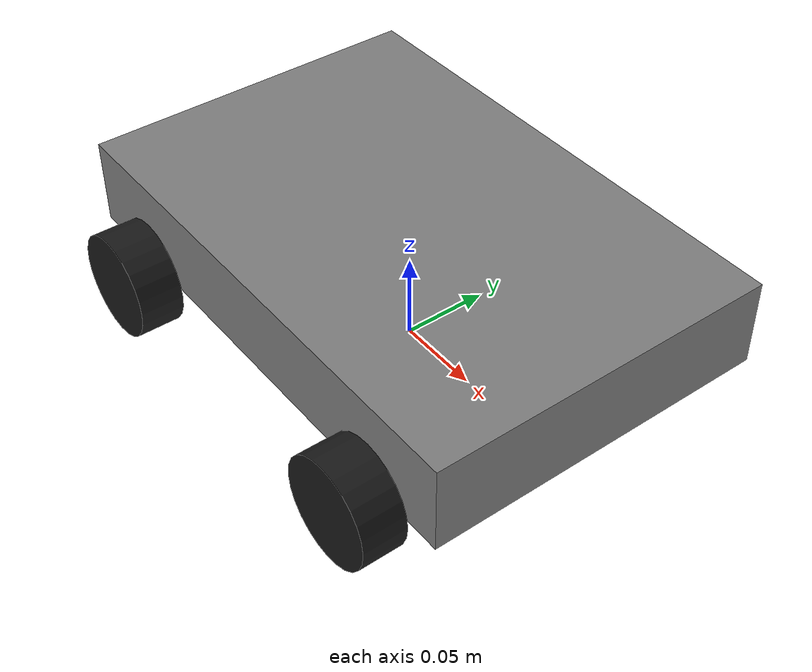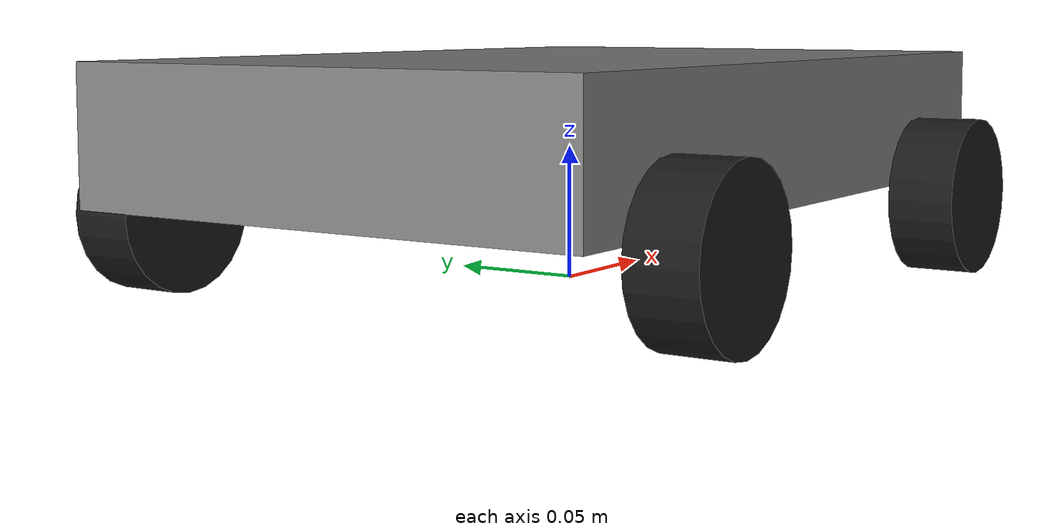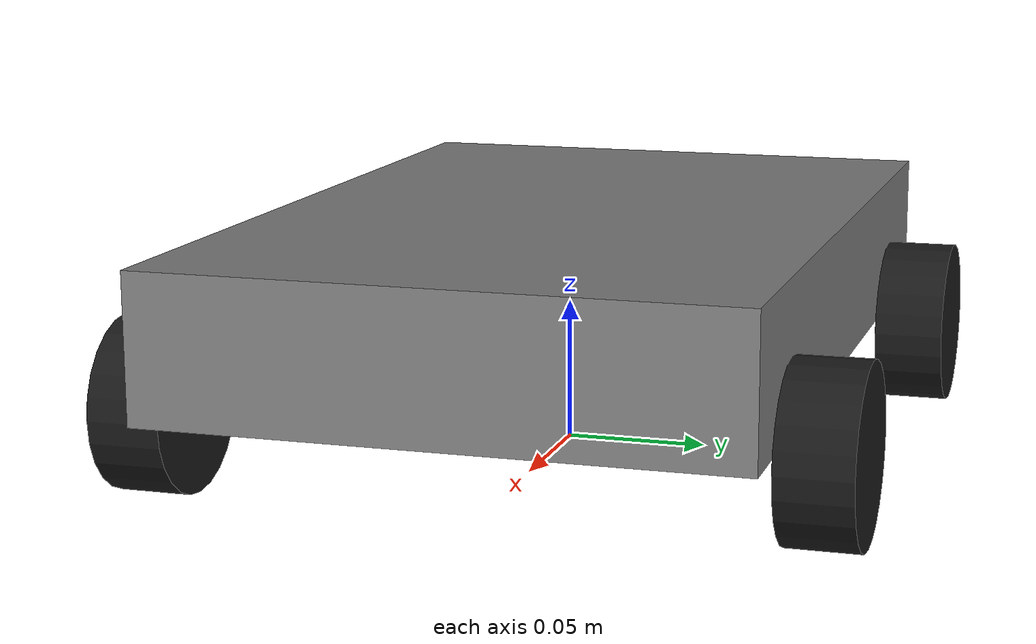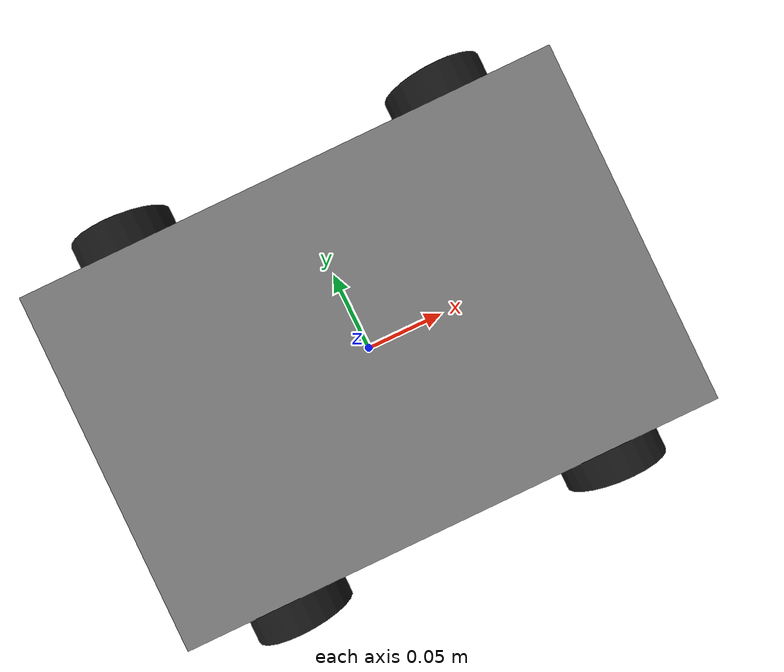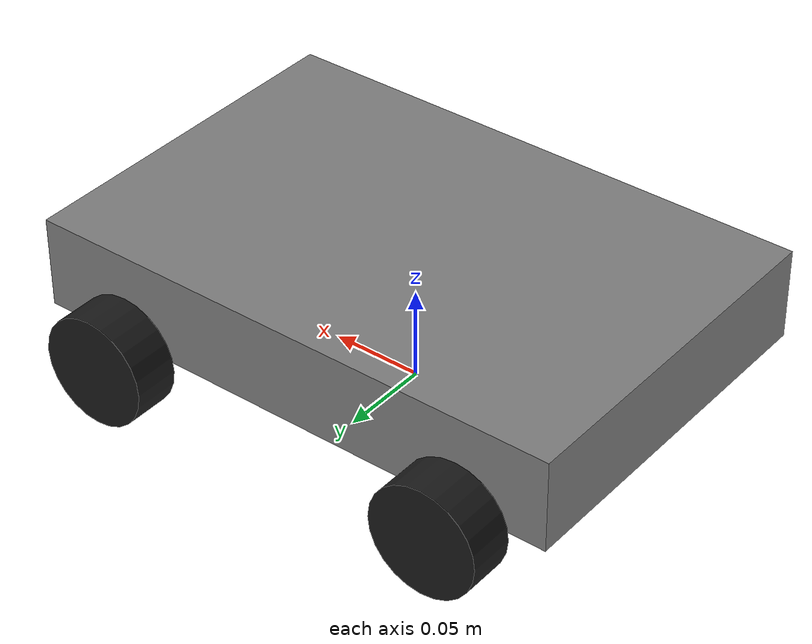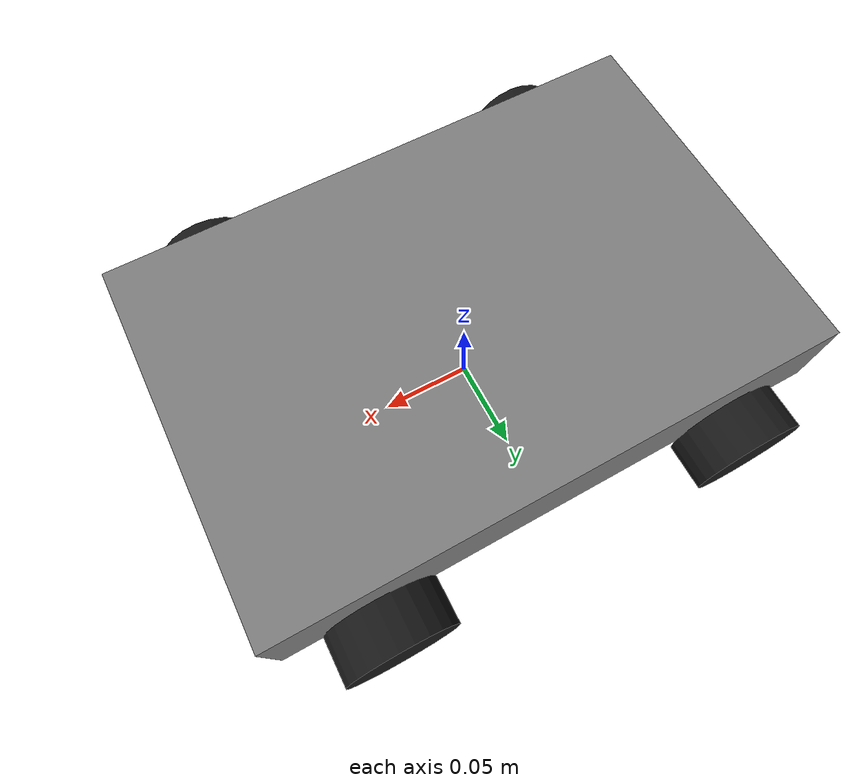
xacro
<?xml version="1.0"?>
<robot xmlns:xacro="http://www.ros.org/wiki/xacro">

  <!-- ========== 公共属性 ========== -->
  <!-- 机器人常量 -->
  <xacro:property name="PI" value="3.1415926535897931"/>

  <!-- 底盘属性 -->
  <xacro:property name="chassis_length" value="0.300"/>
  <xacro:property name="chassis_width" value="0.200"/>
  <xacro:property name="chassis_height" value="0.050"/>
  <xacro:property name="chassis_mass" value="5.0"/>

  <!-- 轮子属性 -->
  <xacro:property name="wheel_radius" value="0.030"/>
  <xacro:property name="wheel_thickness" value="0.025"/>
  <xacro:property name="wheel_mass" value="0.5"/>

  <!-- 安装位置偏移 -->
  <xacro:property name="wheel_z_offset" value="0.030"/>
  <xacro:property name="wheel_x_offset" value="0.100"/>

  <!-- ========== 底盘 ========== -->
  <!-- 底盘链接 (参考坐标系) -->
  <link name="base_link">
    <visual>
      <origin xyz="0 0 0" rpy="0 0 0"/>
      <geometry>
        <box size="${chassis_length} ${chassis_width} ${chassis_height}"/>
      </geometry>
      <material name="grey">
        <color rgba="0.5 0.5 0.5 1.0"/>
      </material>
    </visual>
    <collision>
      <origin xyz="0 0 0" rpy="0 0 0"/>
      <geometry>
        <box size="${chassis_length} ${chassis_width} ${chassis_height}"/>
      </geometry>
    </collision>
    <inertial>
      <origin xyz="0 0 0" rpy="0 0 0"/>
      <mass value="${chassis_mass}"/>
      <inertia ixx="${chassis_mass / 12.0 * (chassis_width**2 + chassis_height**2)}"
               ixy="0" ixz="0"
               iyy="${chassis_mass / 12.0 * (chassis_length**2 + chassis_height**2)}"
               iyz="0"
               izz="${chassis_mass / 12.0 * (chassis_length**2 + chassis_width**2)}"/>
    </inertial>
  </link>

  <link name="base_footprint" />
  <joint name="base_joint" type="fixed">
    <parent link="base_footprint" />
    <child link="base_link" />
    <origin xyz="0.0 0.0 ${wheel_z_offset + wheel_radius - 0.001}" rpy="0 0 0" />
  </joint>

  <!-- ========== 轮子 ========== -->
  <!-- 左前轮 -->
  <link name="front_left_wheel">
    <visual>
      <origin xyz="0 0 0" rpy="${PI/2} 0 0"/>
      <geometry>
        <cylinder radius="${wheel_radius}" length="${wheel_thickness}"/>
      </geometry>
      <material name="black">
        <color rgba="0.1 0.1 0.1 1.0"/>
      </material>
    </visual>
    <collision>
      <origin xyz="0 0 0" rpy="${PI/2} 0 0"/>
      <geometry>
        <cylinder radius="${wheel_radius}" length="${wheel_thickness}"/>
      </geometry>
    </collision>
    <inertial>
      <origin xyz="0 0 0" rpy="0 0 0"/>
      <mass value="${wheel_mass}"/>
      <inertia ixx="${wheel_mass / 12.0 * (3*wheel_radius**2 + wheel_thickness**2)}"
               ixy="0" ixz="0"
               iyy="${wheel_mass / 12.0 * (3*wheel_radius**2 + wheel_thickness**2)}"
               iyz="0"
               izz="${wheel_mass / 2.0 * wheel_radius**2}"/>
    </inertial>
  </link>

  <joint name="front_left_wheel_joint" type="continuous">
    <parent link="base_link"/>
    <child link="front_left_wheel"/>
    <origin xyz="${wheel_x_offset} ${chassis_width/2 + wheel_thickness/2} ${-wheel_z_offset}" rpy="0 0 0"/>
    <axis xyz="0 1 0"/>
  </joint>

  <!-- 右前轮 -->
  <link name="front_right_wheel">
    <visual>
      <origin xyz="0 0 0" rpy="${PI/2} 0 0"/>
      <geometry>
        <cylinder radius="${wheel_radius}" length="${wheel_thickness}"/>
      </geometry>
      <material name="black">
        <color rgba="0.1 0.1 0.1 1.0"/>
      </material>
    </visual>
    <collision>
      <origin xyz="0 0 0" rpy="${PI/2} 0 0"/>
      <geometry>
        <cylinder radius="${wheel_radius}" length="${wheel_thickness}"/>
      </geometry>
    </collision>
    <inertial>
      <origin xyz="0 0 0" rpy="0 0 0"/>
      <mass value="${wheel_mass}"/>
      <inertia ixx="${wheel_mass / 12.0 * (3*wheel_radius**2 + wheel_thickness**2)}"
               ixy="0" ixz="0"
               iyy="${wheel_mass / 12.0 * (3*wheel_radius**2 + wheel_thickness**2)}"
               iyz="0"
               izz="${wheel_mass / 2.0 * wheel_radius**2}"/>
    </inertial>
  </link>

  <joint name="front_right_wheel_joint" type="continuous">
    <parent link="base_link"/>
    <child link="front_right_wheel"/>
    <origin xyz="${wheel_x_offset} ${-chassis_width/2 - wheel_thickness/2} ${-wheel_z_offset}" rpy="0 0 0"/>
    <axis xyz="0 1 0"/>
  </joint>

  <!-- 左后轮 -->
  <link name="rear_left_wheel">
    <visual>
      <origin xyz="0 0 0" rpy="${PI/2} 0 0"/>
      <geometry>
        <cylinder radius="${wheel_radius}" length="${wheel_thickness}"/>
      </geometry>
      <material name="black">
        <color rgba="0.1 0.1 0.1 1.0"/>
      </material>
    </visual>
    <collision>
      <origin xyz="0 0 0" rpy="${PI/2} 0 0"/>
      <geometry>
        <cylinder radius="${wheel_radius}" length="${wheel_thickness}"/>
      </geometry>
    </collision>
    <inertial>
      <origin xyz="0 0 0" rpy="0 0 0"/>
      <mass value="${wheel_mass}"/>
      <inertia ixx="${wheel_mass / 12.0 * (3*wheel_radius**2 + wheel_thickness**2)}"
               ixy="0" ixz="0"
               iyy="${wheel_mass / 12.0 * (3*wheel_radius**2 + wheel_thickness**2)}"
               iyz="0"
               izz="${wheel_mass / 2.0 * wheel_radius**2}"/>
    </inertial>
  </link>

  <joint name="rear_left_wheel_joint" type="continuous">
    <parent link="base_link"/>
    <child link="rear_left_wheel"/>
    <origin xyz="${-wheel_x_offset} ${chassis_width/2 + wheel_thickness/2} ${-wheel_z_offset}" rpy="0 0 0"/>
    <axis xyz="0 1 0"/>
  </joint>

  <!-- 右后轮 -->
  <link name="rear_right_wheel">
    <visual>
      <origin xyz="0 0 0" rpy="${PI/2} 0 0"/>
      <geometry>
        <cylinder radius="${wheel_radius}" length="${wheel_thickness}"/>
      </geometry>
      <material name="black">
        <color rgba="0.1 0.1 0.1 1.0"/>
      </material>
    </visual>
    <collision>
      <origin xyz="0 0 0" rpy="${PI/2} 0 0"/>
      <geometry>
        <cylinder radius="${wheel_radius}" length="${wheel_thickness}"/>
      </geometry>
    </collision>
    <inertial>
      <origin xyz="0 0 0" rpy="0 0 0"/>
      <mass value="${wheel_mass}"/>
      <inertia ixx="${wheel_mass / 12.0 * (3*wheel_radius**2 + wheel_thickness**2)}"
               ixy="0" ixz="0"
               iyy="${wheel_mass / 12.0 * (3*wheel_radius**2 + wheel_thickness**2)}"
               iyz="0"
               izz="${wheel_mass / 2.0 * wheel_radius**2}"/>
    </inertial>
  </link>

  <joint name="rear_right_wheel_joint" type="continuous">
    <parent link="base_link"/>
    <child link="rear_right_wheel"/>
    <origin xyz="${-wheel_x_offset} ${-chassis_width/2 - wheel_thickness/2} ${-wheel_z_offset}" rpy="0 0 0"/>
    <axis xyz="0 1 0"/>
  </joint>

  <!-- ========== Gazebo 材质 ========== -->
  <gazebo reference="base_link">
    <material>Gazebo/Grey</material>
  </gazebo>
  <gazebo reference="front_left_wheel">
    <material>Gazebo/Black</material>
    <mu1 value="20.0"/>
    <mu2 value="20.0"/>
    <kp value="1000000000.0"/>
    <kd value="1.0"/>
  </gazebo>
  <gazebo reference="front_right_wheel">
    <material>Gazebo/Black</material>
    <mu1 value="20.0"/>
    <mu2 value="20.0"/>
    <kp value="1000000000.0"/>
    <kd value="1.0"/>
  </gazebo>
  <gazebo reference="rear_left_wheel">
    <material>Gazebo/Black</material>
    <mu1 value="20.0"/>
    <mu2 value="20.0"/>
    <kp value="1000000000.0"/>
    <kd value="1.0"/>
  </gazebo>
  <gazebo reference="rear_right_wheel">
    <material>Gazebo/Black</material>
    <mu1 value="20.0"/>
    <mu2 value="20.0"/>
    <kp value="1000000000.0"/>
    <kd value="1.0"/>
  </gazebo>

</robot>
